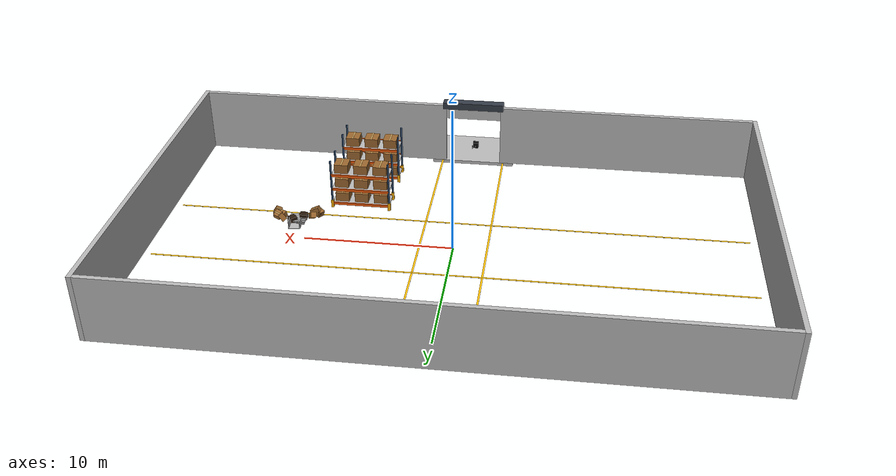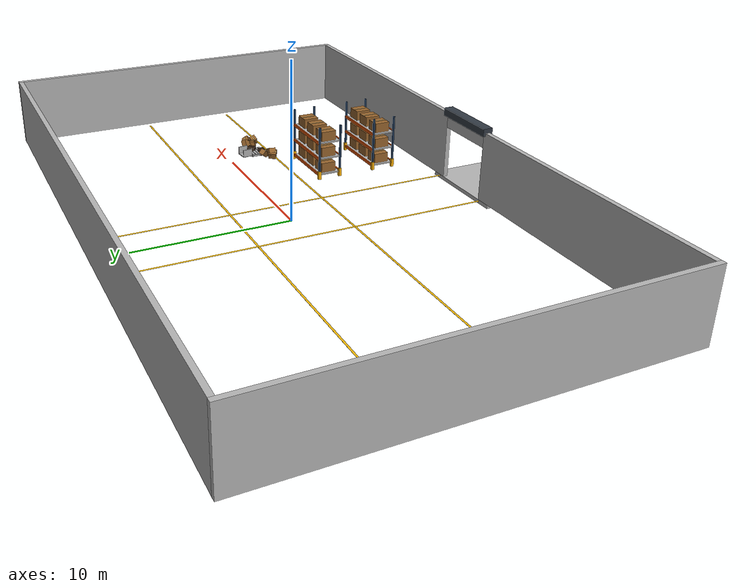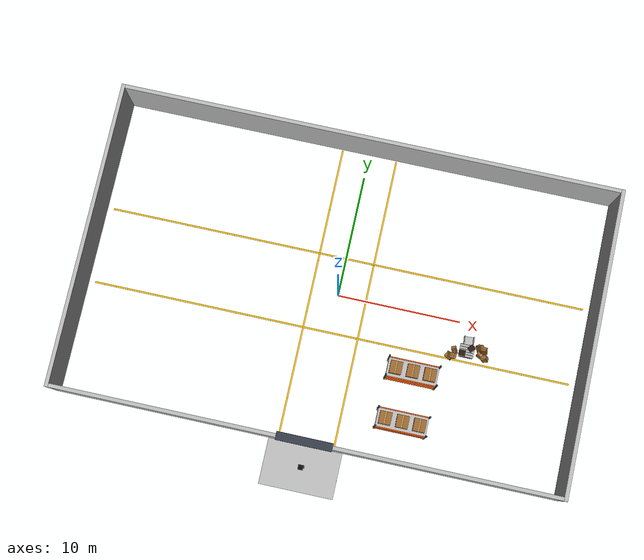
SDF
<sdf version="1.9">
 <world name="factory">
  <model name="perimeter_one_entrance">
   <static>true</static>
   <link name="body">
    <visual name="west_visual">
     <pose>-20.15 0 2.25 0 0 0</pose>
     <geometry><mesh><uri>model://factory_scene_assets/meshes/wall_005.dae</uri></mesh></geometry>
    </visual>
    <collision name="west_collision">
     <pose>-20.15 0 2.25 0 0 0</pose>
     <geometry><box><size>0.3 24.6 4.5</size></box></geometry>
    </collision>
    <visual name="east_visual">
     <pose>20.15 0 2.25 0 0 0</pose>
     <geometry><mesh><uri>model://factory_scene_assets/meshes/wall_005.dae</uri></mesh></geometry>
    </visual>
    <collision name="east_collision">
     <pose>20.15 0 2.25 0 0 0</pose>
     <geometry><box><size>0.3 24.6 4.5</size></box></geometry>
    </collision>
    <visual name="north_visual">
     <pose>0 12.15 2.25 0 0 0</pose>
     <geometry><mesh><uri>model://factory_scene_assets/meshes/wall_006.dae</uri></mesh></geometry>
    </visual>
    <collision name="north_collision">
     <pose>0 12.15 2.25 0 0 0</pose>
     <geometry><box><size>40 0.3 4.5</size></box></geometry>
    </collision>
    <visual name="south_left_visual">
     <pose>-11 -12.15 2.25 0 0 0</pose>
     <geometry><mesh><uri>model://factory_scene_assets/meshes/wall_007.dae</uri></mesh></geometry>
    </visual>
    <collision name="south_left_collision">
     <pose>-11 -12.15 2.25 0 0 0</pose>
     <geometry><box><size>18 0.3 4.5</size></box></geometry>
    </collision>
    <visual name="south_right_visual">
     <pose>11 -12.15 2.25 0 0 0</pose>
     <geometry><mesh><uri>model://factory_scene_assets/meshes/wall_007.dae</uri></mesh></geometry>
    </visual>
    <collision name="south_right_collision">
     <pose>11 -12.15 2.25 0 0 0</pose>
     <geometry><box><size>18 0.3 4.5</size></box></geometry>
    </collision>
    <visual name="gate_header_visual">
     <pose>0 -12.15 4 0 0 0</pose>
     <geometry><mesh><uri>model://factory_scene_assets/meshes/wall_008.dae</uri></mesh></geometry>
    </visual>
    <collision name="gate_header_collision">
     <pose>0 -12.15 4 0 0 0</pose>
     <geometry><box><size>4 0.3 1</size></box></geometry>
    </collision>
    <visual name="raised_gate_housing_visual">
     <pose>0 -12.15 4.55 0 0 0</pose>
     <geometry><box><size>4.4 0.65 0.5</size></box></geometry>
     <material><ambient>.2 .23 .27 1</ambient><diffuse>.2 .23 .27 1</diffuse></material>
    </visual>
    <collision name="raised_gate_housing_collision">
     <pose>0 -12.15 4.55 0 0 0</pose>
     <geometry><box><size>4.4 0.65 0.5</size></box></geometry>
    </collision>
   </link>
  </model>
  <model name="entrance_apron">
   <static>true</static>
   <link name="body">
    <visual name="slab_visual">
     <pose>0 -14 -0.12 0 0 0</pose>
     <geometry><mesh><uri>model://factory_scene_assets/meshes/floor_009.dae</uri></mesh></geometry>
    </visual>
    <collision name="slab_collision">
     <pose>0 -14 -0.12 0 0 0</pose>
     <geometry><box><size>6 4 0.24</size></box></geometry>
    </collision>
   </link>
  </model>
  <model name="yellow_safety_lines">
   <static>true</static>
   <link name="body">
    <visual name="h0_visual">
     <pose>0 -3.1 0.004 0 0 0</pose>
     <geometry><box><size>39 0.12 0.006</size></box></geometry>
     <material><ambient>1 .76 .025 1</ambient><diffuse>1 .76 .025 1</diffuse></material>
    </visual>
    <visual name="h1_visual">
     <pose>0 3.1 0.004 0 0 0</pose>
     <geometry><box><size>39 0.12 0.006</size></box></geometry>
     <material><ambient>1 .76 .025 1</ambient><diffuse>1 .76 .025 1</diffuse></material>
    </visual>
    <visual name="v0_visual">
     <pose>-2.25 0 0.004 0 0 0</pose>
     <geometry><box><size>0.12 23.8 0.006</size></box></geometry>
     <material><ambient>1 .76 .025 1</ambient><diffuse>1 .76 .025 1</diffuse></material>
    </visual>
    <visual name="v1_visual">
     <pose>2.25 0 0.004 0 0 0</pose>
     <geometry><box><size>0.12 23.8 0.006</size></box></geometry>
     <material><ambient>1 .76 .025 1</ambient><diffuse>1 .76 .025 1</diffuse></material>
    </visual>
   </link>
  </model>
  <model name="rack_1_0_0">
   <static>true</static>
   <pose>7 -9 0 0 0 0</pose>
   <link name="body">
    <visual name="post0_visual">
     <pose>-2 -0.75 1.8 0 0 0</pose>
     <geometry><box><size>0.12 0.12 3.6</size></box></geometry>
     <material><ambient>.12 .22 .34 1</ambient><diffuse>.12 .22 .34 1</diffuse></material>
    </visual>
    <collision name="post0_collision">
     <pose>-2 -0.75 1.8 0 0 0</pose>
     <geometry><box><size>0.12 0.12 3.6</size></box></geometry>
    </collision>
    <visual name="guard0_visual">
     <pose>-2 -0.75 0.275 0 0 0</pose>
     <geometry><box><size>0.18 0.18 0.55</size></box></geometry>
     <material><ambient>1 .7 .02 1</ambient><diffuse>1 .7 .02 1</diffuse></material>
    </visual>
    <collision name="guard0_collision">
     <pose>-2 -0.75 0.275 0 0 0</pose>
     <geometry><box><size>0.18 0.18 0.55</size></box></geometry>
    </collision>
    <visual name="post1_visual">
     <pose>2 -0.75 1.8 0 0 0</pose>
     <geometry><box><size>0.12 0.12 3.6</size></box></geometry>
     <material><ambient>.12 .22 .34 1</ambient><diffuse>.12 .22 .34 1</diffuse></material>
    </visual>
    <collision name="post1_collision">
     <pose>2 -0.75 1.8 0 0 0</pose>
     <geometry><box><size>0.12 0.12 3.6</size></box></geometry>
    </collision>
    <visual name="guard1_visual">
     <pose>2 -0.75 0.275 0 0 0</pose>
     <geometry><box><size>0.18 0.18 0.55</size></box></geometry>
     <material><ambient>1 .7 .02 1</ambient><diffuse>1 .7 .02 1</diffuse></material>
    </visual>
    <collision name="guard1_collision">
     <pose>2 -0.75 0.275 0 0 0</pose>
     <geometry><box><size>0.18 0.18 0.55</size></box></geometry>
    </collision>
    <visual name="post2_visual">
     <pose>-2 0.75 1.8 0 0 0</pose>
     <geometry><box><size>0.12 0.12 3.6</size></box></geometry>
     <material><ambient>.12 .22 .34 1</ambient><diffuse>.12 .22 .34 1</diffuse></material>
    </visual>
    <collision name="post2_collision">
     <pose>-2 0.75 1.8 0 0 0</pose>
     <geometry><box><size>0.12 0.12 3.6</size></box></geometry>
    </collision>
    <visual name="guard2_visual">
     <pose>-2 0.75 0.275 0 0 0</pose>
     <geometry><box><size>0.18 0.18 0.55</size></box></geometry>
     <material><ambient>1 .7 .02 1</ambient><diffuse>1 .7 .02 1</diffuse></material>
    </visual>
    <collision name="guard2_collision">
     <pose>-2 0.75 0.275 0 0 0</pose>
     <geometry><box><size>0.18 0.18 0.55</size></box></geometry>
    </collision>
    <visual name="post3_visual">
     <pose>2 0.75 1.8 0 0 0</pose>
     <geometry><box><size>0.12 0.12 3.6</size></box></geometry>
     <material><ambient>.12 .22 .34 1</ambient><diffuse>.12 .22 .34 1</diffuse></material>
    </visual>
    <collision name="post3_collision">
     <pose>2 0.75 1.8 0 0 0</pose>
     <geometry><box><size>0.12 0.12 3.6</size></box></geometry>
    </collision>
    <visual name="guard3_visual">
     <pose>2 0.75 0.275 0 0 0</pose>
     <geometry><box><size>0.18 0.18 0.55</size></box></geometry>
     <material><ambient>1 .7 .02 1</ambient><diffuse>1 .7 .02 1</diffuse></material>
    </visual>
    <collision name="guard3_collision">
     <pose>2 0.75 0.275 0 0 0</pose>
     <geometry><box><size>0.18 0.18 0.55</size></box></geometry>
    </collision>
    <visual name="shelf0_visual">
     <pose>0 0 0.3 0 0 0</pose>
     <geometry><mesh><uri>model://factory_scene_assets/meshes/wood_010.dae</uri></mesh></geometry>
    </visual>
    <collision name="shelf0_collision">
     <pose>0 0 0.3 0 0 0</pose>
     <geometry><box><size>4 1.5 0.08</size></box></geometry>
    </collision>
    <visual name="beam0_0_visual">
     <pose>0 -0.77 0.3 0 0 0</pose>
     <geometry><box><size>4 0.08 0.18</size></box></geometry>
     <material><ambient>.95 .35 .035 1</ambient><diffuse>.95 .35 .035 1</diffuse></material>
    </visual>
    <collision name="beam0_0_collision">
     <pose>0 -0.77 0.3 0 0 0</pose>
     <geometry><box><size>4 0.08 0.18</size></box></geometry>
    </collision>
    <visual name="beam0_1_visual">
     <pose>0 0.77 0.3 0 0 0</pose>
     <geometry><box><size>4 0.08 0.18</size></box></geometry>
     <material><ambient>.95 .35 .035 1</ambient><diffuse>.95 .35 .035 1</diffuse></material>
    </visual>
    <collision name="beam0_1_collision">
     <pose>0 0.77 0.3 0 0 0</pose>
     <geometry><box><size>4 0.08 0.18</size></box></geometry>
    </collision>
    <visual name="cargo0_0_visual">
     <pose>-1.35 0 0.665 0 0 0</pose>
     <geometry><box><size>0.95 1 0.65</size></box></geometry>
     <material><ambient>.60 .40 .18 1</ambient><diffuse>.60 .40 .18 1</diffuse></material>
    </visual>
    <collision name="cargo0_0_collision">
     <pose>-1.35 0 0.665 0 0 0</pose>
     <geometry><box><size>0.95 1 0.65</size></box></geometry>
    </collision>
    <visual name="cargo0_0_tape_visual">
     <pose>-1.35 0 0.993 0 0 0</pose>
     <geometry><box><size>0.09 1 0.006</size></box></geometry>
     <material><ambient>.85 .69 .4 1</ambient><diffuse>.85 .69 .4 1</diffuse></material>
    </visual>
    <visual name="cargo0_1_visual">
     <pose>0 0 0.665 0 0 0</pose>
     <geometry><box><size>0.95 1 0.65</size></box></geometry>
     <material><ambient>.60 .40 .18 1</ambient><diffuse>.60 .40 .18 1</diffuse></material>
    </visual>
    <collision name="cargo0_1_collision">
     <pose>0 0 0.665 0 0 0</pose>
     <geometry><box><size>0.95 1 0.65</size></box></geometry>
    </collision>
    <visual name="cargo0_1_tape_visual">
     <pose>0 0 0.993 0 0 0</pose>
     <geometry><box><size>0.09 1 0.006</size></box></geometry>
     <material><ambient>.85 .69 .4 1</ambient><diffuse>.85 .69 .4 1</diffuse></material>
    </visual>
    <visual name="cargo0_2_visual">
     <pose>1.35 0 0.665 0 0 0</pose>
     <geometry><box><size>0.95 1 0.65</size></box></geometry>
     <material><ambient>.60 .40 .18 1</ambient><diffuse>.60 .40 .18 1</diffuse></material>
    </visual>
    <collision name="cargo0_2_collision">
     <pose>1.35 0 0.665 0 0 0</pose>
     <geometry><box><size>0.95 1 0.65</size></box></geometry>
    </collision>
    <visual name="cargo0_2_tape_visual">
     <pose>1.35 0 0.993 0 0 0</pose>
     <geometry><box><size>0.09 1 0.006</size></box></geometry>
     <material><ambient>.85 .69 .4 1</ambient><diffuse>.85 .69 .4 1</diffuse></material>
    </visual>
    <visual name="shelf1_visual">
     <pose>0 0 1.4 0 0 0</pose>
     <geometry><mesh><uri>model://factory_scene_assets/meshes/wood_010.dae</uri></mesh></geometry>
    </visual>
    <collision name="shelf1_collision">
     <pose>0 0 1.4 0 0 0</pose>
     <geometry><box><size>4 1.5 0.08</size></box></geometry>
    </collision>
    <visual name="beam1_0_visual">
     <pose>0 -0.77 1.4 0 0 0</pose>
     <geometry><box><size>4 0.08 0.18</size></box></geometry>
     <material><ambient>.95 .35 .035 1</ambient><diffuse>.95 .35 .035 1</diffuse></material>
    </visual>
    <collision name="beam1_0_collision">
     <pose>0 -0.77 1.4 0 0 0</pose>
     <geometry><box><size>4 0.08 0.18</size></box></geometry>
    </collision>
    <visual name="beam1_1_visual">
     <pose>0 0.77 1.4 0 0 0</pose>
     <geometry><box><size>4 0.08 0.18</size></box></geometry>
     <material><ambient>.95 .35 .035 1</ambient><diffuse>.95 .35 .035 1</diffuse></material>
    </visual>
    <collision name="beam1_1_collision">
     <pose>0 0.77 1.4 0 0 0</pose>
     <geometry><box><size>4 0.08 0.18</size></box></geometry>
    </collision>
    <visual name="cargo1_0_visual">
     <pose>-1.35 0 1.765 0 0 0</pose>
     <geometry><box><size>0.95 1 0.65</size></box></geometry>
     <material><ambient>.60 .40 .18 1</ambient><diffuse>.60 .40 .18 1</diffuse></material>
    </visual>
    <collision name="cargo1_0_collision">
     <pose>-1.35 0 1.765 0 0 0</pose>
     <geometry><box><size>0.95 1 0.65</size></box></geometry>
    </collision>
    <visual name="cargo1_0_tape_visual">
     <pose>-1.35 0 2.093 0 0 0</pose>
     <geometry><box><size>0.09 1 0.006</size></box></geometry>
     <material><ambient>.85 .69 .4 1</ambient><diffuse>.85 .69 .4 1</diffuse></material>
    </visual>
    <visual name="cargo1_1_visual">
     <pose>0 0 1.765 0 0 0</pose>
     <geometry><box><size>0.95 1 0.65</size></box></geometry>
     <material><ambient>.60 .40 .18 1</ambient><diffuse>.60 .40 .18 1</diffuse></material>
    </visual>
    <collision name="cargo1_1_collision">
     <pose>0 0 1.765 0 0 0</pose>
     <geometry><box><size>0.95 1 0.65</size></box></geometry>
    </collision>
    <visual name="cargo1_1_tape_visual">
     <pose>0 0 2.093 0 0 0</pose>
     <geometry><box><size>0.09 1 0.006</size></box></geometry>
     <material><ambient>.85 .69 .4 1</ambient><diffuse>.85 .69 .4 1</diffuse></material>
    </visual>
    <visual name="cargo1_2_visual">
     <pose>1.35 0 1.765 0 0 0</pose>
     <geometry><box><size>0.95 1 0.65</size></box></geometry>
     <material><ambient>.60 .40 .18 1</ambient><diffuse>.60 .40 .18 1</diffuse></material>
    </visual>
    <collision name="cargo1_2_collision">
     <pose>1.35 0 1.765 0 0 0</pose>
     <geometry><box><size>0.95 1 0.65</size></box></geometry>
    </collision>
    <visual name="cargo1_2_tape_visual">
     <pose>1.35 0 2.093 0 0 0</pose>
     <geometry><box><size>0.09 1 0.006</size></box></geometry>
     <material><ambient>.85 .69 .4 1</ambient><diffuse>.85 .69 .4 1</diffuse></material>
    </visual>
    <visual name="shelf2_visual">
     <pose>0 0 2.5 0 0 0</pose>
     <geometry><mesh><uri>model://factory_scene_assets/meshes/wood_010.dae</uri></mesh></geometry>
    </visual>
    <collision name="shelf2_collision">
     <pose>0 0 2.5 0 0 0</pose>
     <geometry><box><size>4 1.5 0.08</size></box></geometry>
    </collision>
    <visual name="beam2_0_visual">
     <pose>0 -0.77 2.5 0 0 0</pose>
     <geometry><box><size>4 0.08 0.18</size></box></geometry>
     <material><ambient>.95 .35 .035 1</ambient><diffuse>.95 .35 .035 1</diffuse></material>
    </visual>
    <collision name="beam2_0_collision">
     <pose>0 -0.77 2.5 0 0 0</pose>
     <geometry><box><size>4 0.08 0.18</size></box></geometry>
    </collision>
    <visual name="beam2_1_visual">
     <pose>0 0.77 2.5 0 0 0</pose>
     <geometry><box><size>4 0.08 0.18</size></box></geometry>
     <material><ambient>.95 .35 .035 1</ambient><diffuse>.95 .35 .035 1</diffuse></material>
    </visual>
    <collision name="beam2_1_collision">
     <pose>0 0.77 2.5 0 0 0</pose>
     <geometry><box><size>4 0.08 0.18</size></box></geometry>
    </collision>
    <visual name="cargo2_0_visual">
     <pose>-1.35 0 2.865 0 0 0</pose>
     <geometry><box><size>0.95 1 0.65</size></box></geometry>
     <material><ambient>.60 .40 .18 1</ambient><diffuse>.60 .40 .18 1</diffuse></material>
    </visual>
    <collision name="cargo2_0_collision">
     <pose>-1.35 0 2.865 0 0 0</pose>
     <geometry><box><size>0.95 1 0.65</size></box></geometry>
    </collision>
    <visual name="cargo2_0_tape_visual">
     <pose>-1.35 0 3.193 0 0 0</pose>
     <geometry><box><size>0.09 1 0.006</size></box></geometry>
     <material><ambient>.85 .69 .4 1</ambient><diffuse>.85 .69 .4 1</diffuse></material>
    </visual>
    <visual name="cargo2_1_visual">
     <pose>0 0 2.865 0 0 0</pose>
     <geometry><box><size>0.95 1 0.65</size></box></geometry>
     <material><ambient>.60 .40 .18 1</ambient><diffuse>.60 .40 .18 1</diffuse></material>
    </visual>
    <collision name="cargo2_1_collision">
     <pose>0 0 2.865 0 0 0</pose>
     <geometry><box><size>0.95 1 0.65</size></box></geometry>
    </collision>
    <visual name="cargo2_1_tape_visual">
     <pose>0 0 3.193 0 0 0</pose>
     <geometry><box><size>0.09 1 0.006</size></box></geometry>
     <material><ambient>.85 .69 .4 1</ambient><diffuse>.85 .69 .4 1</diffuse></material>
    </visual>
    <visual name="cargo2_2_visual">
     <pose>1.35 0 2.865 0 0 0</pose>
     <geometry><box><size>0.95 1 0.65</size></box></geometry>
     <material><ambient>.60 .40 .18 1</ambient><diffuse>.60 .40 .18 1</diffuse></material>
    </visual>
    <collision name="cargo2_2_collision">
     <pose>1.35 0 2.865 0 0 0</pose>
     <geometry><box><size>0.95 1 0.65</size></box></geometry>
    </collision>
    <visual name="cargo2_2_tape_visual">
     <pose>1.35 0 3.193 0 0 0</pose>
     <geometry><box><size>0.09 1 0.006</size></box></geometry>
     <material><ambient>.85 .69 .4 1</ambient><diffuse>.85 .69 .4 1</diffuse></material>
    </visual>
   </link>
  </model>
  <model name="rack_1_0_1">
   <static>true</static>
   <pose>7 -5 0 0 0 0</pose>
   <link name="body">
    <visual name="post0_visual">
     <pose>-2 -0.75 1.8 0 0 0</pose>
     <geometry><box><size>0.12 0.12 3.6</size></box></geometry>
     <material><ambient>.12 .22 .34 1</ambient><diffuse>.12 .22 .34 1</diffuse></material>
    </visual>
    <collision name="post0_collision">
     <pose>-2 -0.75 1.8 0 0 0</pose>
     <geometry><box><size>0.12 0.12 3.6</size></box></geometry>
    </collision>
    <visual name="guard0_visual">
     <pose>-2 -0.75 0.275 0 0 0</pose>
     <geometry><box><size>0.18 0.18 0.55</size></box></geometry>
     <material><ambient>1 .7 .02 1</ambient><diffuse>1 .7 .02 1</diffuse></material>
    </visual>
    <collision name="guard0_collision">
     <pose>-2 -0.75 0.275 0 0 0</pose>
     <geometry><box><size>0.18 0.18 0.55</size></box></geometry>
    </collision>
    <visual name="post1_visual">
     <pose>2 -0.75 1.8 0 0 0</pose>
     <geometry><box><size>0.12 0.12 3.6</size></box></geometry>
     <material><ambient>.12 .22 .34 1</ambient><diffuse>.12 .22 .34 1</diffuse></material>
    </visual>
    <collision name="post1_collision">
     <pose>2 -0.75 1.8 0 0 0</pose>
     <geometry><box><size>0.12 0.12 3.6</size></box></geometry>
    </collision>
    <visual name="guard1_visual">
     <pose>2 -0.75 0.275 0 0 0</pose>
     <geometry><box><size>0.18 0.18 0.55</size></box></geometry>
     <material><ambient>1 .7 .02 1</ambient><diffuse>1 .7 .02 1</diffuse></material>
    </visual>
    <collision name="guard1_collision">
     <pose>2 -0.75 0.275 0 0 0</pose>
     <geometry><box><size>0.18 0.18 0.55</size></box></geometry>
    </collision>
    <visual name="post2_visual">
     <pose>-2 0.75 1.8 0 0 0</pose>
     <geometry><box><size>0.12 0.12 3.6</size></box></geometry>
     <material><ambient>.12 .22 .34 1</ambient><diffuse>.12 .22 .34 1</diffuse></material>
    </visual>
    <collision name="post2_collision">
     <pose>-2 0.75 1.8 0 0 0</pose>
     <geometry><box><size>0.12 0.12 3.6</size></box></geometry>
    </collision>
    <visual name="guard2_visual">
     <pose>-2 0.75 0.275 0 0 0</pose>
     <geometry><box><size>0.18 0.18 0.55</size></box></geometry>
     <material><ambient>1 .7 .02 1</ambient><diffuse>1 .7 .02 1</diffuse></material>
    </visual>
    <collision name="guard2_collision">
     <pose>-2 0.75 0.275 0 0 0</pose>
     <geometry><box><size>0.18 0.18 0.55</size></box></geometry>
    </collision>
    <visual name="post3_visual">
     <pose>2 0.75 1.8 0 0 0</pose>
     <geometry><box><size>0.12 0.12 3.6</size></box></geometry>
     <material><ambient>.12 .22 .34 1</ambient><diffuse>.12 .22 .34 1</diffuse></material>
    </visual>
    <collision name="post3_collision">
     <pose>2 0.75 1.8 0 0 0</pose>
     <geometry><box><size>0.12 0.12 3.6</size></box></geometry>
    </collision>
    <visual name="guard3_visual">
     <pose>2 0.75 0.275 0 0 0</pose>
     <geometry><box><size>0.18 0.18 0.55</size></box></geometry>
     <material><ambient>1 .7 .02 1</ambient><diffuse>1 .7 .02 1</diffuse></material>
    </visual>
    <collision name="guard3_collision">
     <pose>2 0.75 0.275 0 0 0</pose>
     <geometry><box><size>0.18 0.18 0.55</size></box></geometry>
    </collision>
    <visual name="shelf0_visual">
     <pose>0 0 0.3 0 0 0</pose>
     <geometry><mesh><uri>model://factory_scene_assets/meshes/wood_010.dae</uri></mesh></geometry>
    </visual>
    <collision name="shelf0_collision">
     <pose>0 0 0.3 0 0 0</pose>
     <geometry><box><size>4 1.5 0.08</size></box></geometry>
    </collision>
    <visual name="beam0_0_visual">
     <pose>0 -0.77 0.3 0 0 0</pose>
     <geometry><box><size>4 0.08 0.18</size></box></geometry>
     <material><ambient>.95 .35 .035 1</ambient><diffuse>.95 .35 .035 1</diffuse></material>
    </visual>
    <collision name="beam0_0_collision">
     <pose>0 -0.77 0.3 0 0 0</pose>
     <geometry><box><size>4 0.08 0.18</size></box></geometry>
    </collision>
    <visual name="beam0_1_visual">
     <pose>0 0.77 0.3 0 0 0</pose>
     <geometry><box><size>4 0.08 0.18</size></box></geometry>
     <material><ambient>.95 .35 .035 1</ambient><diffuse>.95 .35 .035 1</diffuse></material>
    </visual>
    <collision name="beam0_1_collision">
     <pose>0 0.77 0.3 0 0 0</pose>
     <geometry><box><size>4 0.08 0.18</size></box></geometry>
    </collision>
    <visual name="cargo0_0_visual">
     <pose>-1.35 0 0.665 0 0 0</pose>
     <geometry><box><size>0.95 1 0.65</size></box></geometry>
     <material><ambient>.60 .40 .18 1</ambient><diffuse>.60 .40 .18 1</diffuse></material>
    </visual>
    <collision name="cargo0_0_collision">
     <pose>-1.35 0 0.665 0 0 0</pose>
     <geometry><box><size>0.95 1 0.65</size></box></geometry>
    </collision>
    <visual name="cargo0_0_tape_visual">
     <pose>-1.35 0 0.993 0 0 0</pose>
     <geometry><box><size>0.09 1 0.006</size></box></geometry>
     <material><ambient>.85 .69 .4 1</ambient><diffuse>.85 .69 .4 1</diffuse></material>
    </visual>
    <visual name="cargo0_1_visual">
     <pose>0 0 0.665 0 0 0</pose>
     <geometry><box><size>0.95 1 0.65</size></box></geometry>
     <material><ambient>.60 .40 .18 1</ambient><diffuse>.60 .40 .18 1</diffuse></material>
    </visual>
    <collision name="cargo0_1_collision">
     <pose>0 0 0.665 0 0 0</pose>
     <geometry><box><size>0.95 1 0.65</size></box></geometry>
    </collision>
    <visual name="cargo0_1_tape_visual">
     <pose>0 0 0.993 0 0 0</pose>
     <geometry><box><size>0.09 1 0.006</size></box></geometry>
     <material><ambient>.85 .69 .4 1</ambient><diffuse>.85 .69 .4 1</diffuse></material>
    </visual>
    <visual name="cargo0_2_visual">
     <pose>1.35 0 0.665 0 0 0</pose>
     <geometry><box><size>0.95 1 0.65</size></box></geometry>
     <material><ambient>.60 .40 .18 1</ambient><diffuse>.60 .40 .18 1</diffuse></material>
    </visual>
    <collision name="cargo0_2_collision">
     <pose>1.35 0 0.665 0 0 0</pose>
     <geometry><box><size>0.95 1 0.65</size></box></geometry>
    </collision>
    <visual name="cargo0_2_tape_visual">
     <pose>1.35 0 0.993 0 0 0</pose>
     <geometry><box><size>0.09 1 0.006</size></box></geometry>
     <material><ambient>.85 .69 .4 1</ambient><diffuse>.85 .69 .4 1</diffuse></material>
    </visual>
    <visual name="shelf1_visual">
     <pose>0 0 1.4 0 0 0</pose>
     <geometry><mesh><uri>model://factory_scene_assets/meshes/wood_010.dae</uri></mesh></geometry>
    </visual>
    <collision name="shelf1_collision">
     <pose>0 0 1.4 0 0 0</pose>
     <geometry><box><size>4 1.5 0.08</size></box></geometry>
    </collision>
    <visual name="beam1_0_visual">
     <pose>0 -0.77 1.4 0 0 0</pose>
     <geometry><box><size>4 0.08 0.18</size></box></geometry>
     <material><ambient>.95 .35 .035 1</ambient><diffuse>.95 .35 .035 1</diffuse></material>
    </visual>
    <collision name="beam1_0_collision">
     <pose>0 -0.77 1.4 0 0 0</pose>
     <geometry><box><size>4 0.08 0.18</size></box></geometry>
    </collision>
    <visual name="beam1_1_visual">
     <pose>0 0.77 1.4 0 0 0</pose>
     <geometry><box><size>4 0.08 0.18</size></box></geometry>
     <material><ambient>.95 .35 .035 1</ambient><diffuse>.95 .35 .035 1</diffuse></material>
    </visual>
    <collision name="beam1_1_collision">
     <pose>0 0.77 1.4 0 0 0</pose>
     <geometry><box><size>4 0.08 0.18</size></box></geometry>
    </collision>
    <visual name="cargo1_0_visual">
     <pose>-1.35 0 1.765 0 0 0</pose>
     <geometry><box><size>0.95 1 0.65</size></box></geometry>
     <material><ambient>.60 .40 .18 1</ambient><diffuse>.60 .40 .18 1</diffuse></material>
    </visual>
    <collision name="cargo1_0_collision">
     <pose>-1.35 0 1.765 0 0 0</pose>
     <geometry><box><size>0.95 1 0.65</size></box></geometry>
    </collision>
    <visual name="cargo1_0_tape_visual">
     <pose>-1.35 0 2.093 0 0 0</pose>
     <geometry><box><size>0.09 1 0.006</size></box></geometry>
     <material><ambient>.85 .69 .4 1</ambient><diffuse>.85 .69 .4 1</diffuse></material>
    </visual>
    <visual name="cargo1_1_visual">
     <pose>0 0 1.765 0 0 0</pose>
     <geometry><box><size>0.95 1 0.65</size></box></geometry>
     <material><ambient>.60 .40 .18 1</ambient><diffuse>.60 .40 .18 1</diffuse></material>
    </visual>
    <collision name="cargo1_1_collision">
     <pose>0 0 1.765 0 0 0</pose>
     <geometry><box><size>0.95 1 0.65</size></box></geometry>
    </collision>
    <visual name="cargo1_1_tape_visual">
     <pose>0 0 2.093 0 0 0</pose>
     <geometry><box><size>0.09 1 0.006</size></box></geometry>
     <material><ambient>.85 .69 .4 1</ambient><diffuse>.85 .69 .4 1</diffuse></material>
    </visual>
    <visual name="cargo1_2_visual">
     <pose>1.35 0 1.765 0 0 0</pose>
     <geometry><box><size>0.95 1 0.65</size></box></geometry>
     <material><ambient>.60 .40 .18 1</ambient><diffuse>.60 .40 .18 1</diffuse></material>
    </visual>
    <collision name="cargo1_2_collision">
     <pose>1.35 0 1.765 0 0 0</pose>
     <geometry><box><size>0.95 1 0.65</size></box></geometry>
    </collision>
    <visual name="cargo1_2_tape_visual">
     <pose>1.35 0 2.093 0 0 0</pose>
     <geometry><box><size>0.09 1 0.006</size></box></geometry>
     <material><ambient>.85 .69 .4 1</ambient><diffuse>.85 .69 .4 1</diffuse></material>
    </visual>
    <visual name="shelf2_visual">
     <pose>0 0 2.5 0 0 0</pose>
     <geometry><mesh><uri>model://factory_scene_assets/meshes/wood_010.dae</uri></mesh></geometry>
    </visual>
    <collision name="shelf2_collision">
     <pose>0 0 2.5 0 0 0</pose>
     <geometry><box><size>4 1.5 0.08</size></box></geometry>
    </collision>
    <visual name="beam2_0_visual">
     <pose>0 -0.77 2.5 0 0 0</pose>
     <geometry><box><size>4 0.08 0.18</size></box></geometry>
     <material><ambient>.95 .35 .035 1</ambient><diffuse>.95 .35 .035 1</diffuse></material>
    </visual>
    <collision name="beam2_0_collision">
     <pose>0 -0.77 2.5 0 0 0</pose>
     <geometry><box><size>4 0.08 0.18</size></box></geometry>
    </collision>
    <visual name="beam2_1_visual">
     <pose>0 0.77 2.5 0 0 0</pose>
     <geometry><box><size>4 0.08 0.18</size></box></geometry>
     <material><ambient>.95 .35 .035 1</ambient><diffuse>.95 .35 .035 1</diffuse></material>
    </visual>
    <collision name="beam2_1_collision">
     <pose>0 0.77 2.5 0 0 0</pose>
     <geometry><box><size>4 0.08 0.18</size></box></geometry>
    </collision>
    <visual name="cargo2_0_visual">
     <pose>-1.35 0 2.865 0 0 0</pose>
     <geometry><box><size>0.95 1 0.65</size></box></geometry>
     <material><ambient>.60 .40 .18 1</ambient><diffuse>.60 .40 .18 1</diffuse></material>
    </visual>
    <collision name="cargo2_0_collision">
     <pose>-1.35 0 2.865 0 0 0</pose>
     <geometry><box><size>0.95 1 0.65</size></box></geometry>
    </collision>
    <visual name="cargo2_0_tape_visual">
     <pose>-1.35 0 3.193 0 0 0</pose>
     <geometry><box><size>0.09 1 0.006</size></box></geometry>
     <material><ambient>.85 .69 .4 1</ambient><diffuse>.85 .69 .4 1</diffuse></material>
    </visual>
    <visual name="cargo2_1_visual">
     <pose>0 0 2.865 0 0 0</pose>
     <geometry><box><size>0.95 1 0.65</size></box></geometry>
     <material><ambient>.60 .40 .18 1</ambient><diffuse>.60 .40 .18 1</diffuse></material>
    </visual>
    <collision name="cargo2_1_collision">
     <pose>0 0 2.865 0 0 0</pose>
     <geometry><box><size>0.95 1 0.65</size></box></geometry>
    </collision>
    <visual name="cargo2_1_tape_visual">
     <pose>0 0 3.193 0 0 0</pose>
     <geometry><box><size>0.09 1 0.006</size></box></geometry>
     <material><ambient>.85 .69 .4 1</ambient><diffuse>.85 .69 .4 1</diffuse></material>
    </visual>
    <visual name="cargo2_2_visual">
     <pose>1.35 0 2.865 0 0 0</pose>
     <geometry><box><size>0.95 1 0.65</size></box></geometry>
     <material><ambient>.60 .40 .18 1</ambient><diffuse>.60 .40 .18 1</diffuse></material>
    </visual>
    <collision name="cargo2_2_collision">
     <pose>1.35 0 2.865 0 0 0</pose>
     <geometry><box><size>0.95 1 0.65</size></box></geometry>
    </collision>
    <visual name="cargo2_2_tape_visual">
     <pose>1.35 0 3.193 0 0 0</pose>
     <geometry><box><size>0.09 1 0.006</size></box></geometry>
     <material><ambient>.85 .69 .4 1</ambient><diffuse>.85 .69 .4 1</diffuse></material>
    </visual>
   </link>
  </model>
  <model name="fallen_pallet_8">
   <static>true</static>
   <pose>11 -2.2 0 0 0 0</pose>
   <link name="body">
    <visual name="runner0_visual">
     <pose>-0.48 0 0.065 0 0 0</pose>
     <geometry><mesh><uri>model://factory_scene_assets/meshes/wood_011.dae</uri></mesh></geometry>
    </visual>
    <collision name="runner0_collision">
     <pose>-0.48 0 0.065 0 0 0</pose>
     <geometry><box><size>0.12 1 0.13</size></box></geometry>
    </collision>
    <visual name="runner1_visual">
     <pose>0 0 0.065 0 0 0</pose>
     <geometry><mesh><uri>model://factory_scene_assets/meshes/wood_011.dae</uri></mesh></geometry>
    </visual>
    <collision name="runner1_collision">
     <pose>0 0 0.065 0 0 0</pose>
     <geometry><box><size>0.12 1 0.13</size></box></geometry>
    </collision>
    <visual name="runner2_visual">
     <pose>0.48 0 0.065 0 0 0</pose>
     <geometry><mesh><uri>model://factory_scene_assets/meshes/wood_011.dae</uri></mesh></geometry>
    </visual>
    <collision name="runner2_collision">
     <pose>0.48 0 0.065 0 0 0</pose>
     <geometry><box><size>0.12 1 0.13</size></box></geometry>
    </collision>
    <visual name="plank0_visual">
     <pose>0 -0.4 0.155 0 0 0</pose>
     <geometry><mesh><uri>model://factory_scene_assets/meshes/wood_012.dae</uri></mesh></geometry>
    </visual>
    <collision name="plank0_collision">
     <pose>0 -0.4 0.155 0 0 0</pose>
     <geometry><box><size>1.2 0.16 0.05</size></box></geometry>
    </collision>
    <visual name="plank1_visual">
     <pose>0 -0.2 0.155 0 0 0</pose>
     <geometry><mesh><uri>model://factory_scene_assets/meshes/wood_012.dae</uri></mesh></geometry>
    </visual>
    <collision name="plank1_collision">
     <pose>0 -0.2 0.155 0 0 0</pose>
     <geometry><box><size>1.2 0.16 0.05</size></box></geometry>
    </collision>
    <visual name="plank2_visual">
     <pose>0 0 0.155 0 0 0</pose>
     <geometry><mesh><uri>model://factory_scene_assets/meshes/wood_012.dae</uri></mesh></geometry>
    </visual>
    <collision name="plank2_collision">
     <pose>0 0 0.155 0 0 0</pose>
     <geometry><box><size>1.2 0.16 0.05</size></box></geometry>
    </collision>
    <visual name="plank3_visual">
     <pose>0 0.2 0.155 0 0 0</pose>
     <geometry><mesh><uri>model://factory_scene_assets/meshes/wood_012.dae</uri></mesh></geometry>
    </visual>
    <collision name="plank3_collision">
     <pose>0 0.2 0.155 0 0 0</pose>
     <geometry><box><size>1.2 0.16 0.05</size></box></geometry>
    </collision>
    <visual name="plank4_visual">
     <pose>0 0.4 0.155 0 0 0</pose>
     <geometry><mesh><uri>model://factory_scene_assets/meshes/wood_012.dae</uri></mesh></geometry>
    </visual>
    <collision name="plank4_collision">
     <pose>0 0.4 0.155 0 0 0</pose>
     <geometry><box><size>1.2 0.16 0.05</size></box></geometry>
    </collision>
   </link>
  </model>
  <model name="fallen_box_08_0">
   <static>true</static>
   <pose>12 -1.836971 0 0 0 0</pose>
   <link name="body">
    <visual name="box_visual">
     <pose>0 0 0.4043261 0.5717792 -0.342539 2.034325</pose>
     <geometry><box><size>0.5749726 0.3667699 0.5158422</size></box></geometry>
     <material><ambient>.60 .40 .18 1</ambient><diffuse>.60 .40 .18 1</diffuse></material>
    </visual>
    <collision name="box_collision">
     <pose>0 0 0.4043261 0.5717792 -0.342539 2.034325</pose>
     <geometry><box><size>0.5749726 0.3667699 0.5158422</size></box></geometry>
    </collision>
    <visual name="box_tape_visual">
     <pose>0.1592445 -0.002793745 0.6109978 0.5717792 -0.342539 2.034325</pose>
     <geometry><box><size>0.09 0.3667699 0.006</size></box></geometry>
     <material><ambient>.85 .69 .4 1</ambient><diffuse>.85 .69 .4 1</diffuse></material>
    </visual>
   </link>
  </model>
  <model name="fallen_box_08_1">
   <static>true</static>
   <pose>10 -2.360068 0 0 0 0</pose>
   <link name="body">
    <visual name="box_visual">
     <pose>0 0 0.3509962 -0.6777063 0.2121767 -2.69873</pose>
     <geometry><box><size>0.3840654 0.5254966 0.366376</size></box></geometry>
     <material><ambient>.60 .40 .18 1</ambient><diffuse>.60 .40 .18 1</diffuse></material>
    </visual>
    <collision name="box_collision">
     <pose>0 0 0.3509962 -0.6777063 0.2121767 -2.69873</pose>
     <geometry><box><size>0.3840654 0.5254966 0.366376</size></box></geometry>
    </collision>
    <visual name="box_tape_visual">
     <pose>0.02242917 -0.1185682 0.4927865 -0.6777063 0.2121767 -2.69873</pose>
     <geometry><box><size>0.09 0.5254966 0.006</size></box></geometry>
     <material><ambient>.85 .69 .4 1</ambient><diffuse>.85 .69 .4 1</diffuse></material>
    </visual>
   </link>
  </model>
  <model name="fallen_box_08_2">
   <static>true</static>
   <pose>12.16 -2.332859 0 0 0 0</pose>
   <link name="body">
    <visual name="box_visual">
     <pose>0 0 0.2913396 0.2780412 -0.001475857 2.708821</pose>
     <geometry><box><size>0.6308229 0.4257868 0.4626501</size></box></geometry>
     <material><ambient>.60 .40 .18 1</ambient><diffuse>.60 .40 .18 1</diffuse></material>
    </visual>
    <collision name="box_collision">
     <pose>0 0 0.2913396 0.2780412 -0.001475857 2.708821</pose>
     <geometry><box><size>0.6308229 0.4257868 0.4626501</size></box></geometry>
    </collision>
    <visual name="box_tape_visual">
     <pose>0.0272752 0.05824686 0.5166651 0.2780412 -0.001475857 2.708821</pose>
     <geometry><box><size>0.09 0.4257868 0.006</size></box></geometry>
     <material><ambient>.85 .69 .4 1</ambient><diffuse>.85 .69 .4 1</diffuse></material>
    </visual>
   </link>
  </model>
  <model name="fallen_box_08_3">
   <static>true</static>
   <pose>9.84 -2.829786 0 0 0 0</pose>
   <link name="body">
    <visual name="box_visual">
     <pose>0 0 0.3946909 0.06241151 0.4671912 -0.03406994</pose>
     <geometry><box><size>0.615575 0.4428751 0.5246069</size></box></geometry>
     <material><ambient>.60 .40 .18 1</ambient><diffuse>.60 .40 .18 1</diffuse></material>
    </visual>
    <collision name="box_collision">
     <pose>0 0 0.3946909 0.06241151 0.4671912 -0.03406994</pose>
     <geometry><box><size>0.615575 0.4428751 0.5246069</size></box></geometry>
    </collision>
    <visual name="box_tape_visual">
     <pose>0.1186219 -0.02059986 0.6311024 0.06241151 0.4671912 -0.03406994</pose>
     <geometry><box><size>0.09 0.4428751 0.006</size></box></geometry>
     <material><ambient>.85 .69 .4 1</ambient><diffuse>.85 .69 .4 1</diffuse></material>
    </visual>
   </link>
  </model>
  <model name="fallen_box_08_4">
   <static>true</static>
   <pose>12.32 -2.022018 0 0 0 0</pose>
   <link name="body">
    <visual name="box_visual">
     <pose>0 0 0.4504998 0.4511938 -0.5758483 -1.993516</pose>
     <geometry><box><size>0.4640204 0.4439154 0.6173452</size></box></geometry>
     <material><ambient>.60 .40 .18 1</ambient><diffuse>.60 .40 .18 1</diffuse></material>
    </visual>
    <collision name="box_collision">
     <pose>0 0 0.4504998 0.4511938 -0.5758483 -1.993516</pose>
     <geometry><box><size>0.4640204 0.4439154 0.6173452</size></box></geometry>
    </collision>
    <visual name="box_tape_visual">
     <pose>-0.0612806 0.1950441 0.6857491 0.4511938 -0.5758483 -1.993516</pose>
     <geometry><box><size>0.09 0.4439154 0.006</size></box></geometry>
     <material><ambient>.85 .69 .4 1</ambient><diffuse>.85 .69 .4 1</diffuse></material>
    </visual>
   </link>
  </model>
  <model name="fallen_box_08_5">
   <static>true</static>
   <pose>9.68 -2.887684 0 0 0 0</pose>
   <link name="body">
    <visual name="box_visual">
     <pose>0 0 0.3056461 0.05853414 -0.3022905 -0.5490265</pose>
     <geometry><box><size>0.5597059 0.4860697 0.4171126</size></box></geometry>
     <material><ambient>.60 .40 .18 1</ambient><diffuse>.60 .40 .18 1</diffuse></material>
    </visual>
    <collision name="box_collision">
     <pose>0 0 0.3056461 0.05853414 -0.3022905 -0.5490265</pose>
     <geometry><box><size>0.5597059 0.4860697 0.4171126</size></box></geometry>
    </collision>
    <visual name="box_tape_visual">
     <pose>-0.06009224 0.02225396 0.507264 0.05853414 -0.3022905 -0.5490265</pose>
     <geometry><box><size>0.09 0.4860697 0.006</size></box></geometry>
     <material><ambient>.85 .69 .4 1</ambient><diffuse>.85 .69 .4 1</diffuse></material>
    </visual>
   </link>
  </model>
  <model name="fallen_box_08_6">
   <static>true</static>
   <pose>12.48 -2.556914 0 0 0 0</pose>
   <link name="body">
    <visual name="box_visual">
     <pose>0 0 0.397664 -0.5179561 0.3169928 1.654032</pose>
     <geometry><box><size>0.3904401 0.4329137 0.5450516</size></box></geometry>
     <material><ambient>.60 .40 .18 1</ambient><diffuse>.60 .40 .18 1</diffuse></material>
    </visual>
    <collision name="box_collision">
     <pose>0 0 0.397664 -0.5179561 0.3169928 1.654032</pose>
     <geometry><box><size>0.3904401 0.4329137 0.5450516</size></box></geometry>
    </collision>
    <visual name="box_tape_visual">
     <pose>-0.1421458 0.06301936 0.625123 -0.5179561 0.3169928 1.654032</pose>
     <geometry><box><size>0.09 0.4329137 0.006</size></box></geometry>
     <material><ambient>.85 .69 .4 1</ambient><diffuse>.85 .69 .4 1</diffuse></material>
    </visual>
   </link>
  </model>
  <model name="broken_crate_08">
   <static>true</static>
   <pose>11 -1.35 0 0 0 0.08101034</pose>
   <link name="body">
    <visual name="base_visual">
     <pose>0 0 0.03 0 0 0</pose>
     <geometry><mesh><uri>model://factory_scene_assets/meshes/wood_013.dae</uri></mesh></geometry>
    </visual>
    <collision name="base_collision">
     <pose>0 0 0.03 0 0 0</pose>
     <geometry><box><size>0.8 0.65 0.06</size></box></geometry>
    </collision>
    <visual name="side0_visual">
     <pose>-0.37 0 0.28 0 0 0</pose>
     <geometry><mesh><uri>model://factory_scene_assets/meshes/wood_014.dae</uri></mesh></geometry>
    </visual>
    <collision name="side0_collision">
     <pose>-0.37 0 0.28 0 0 0</pose>
     <geometry><box><size>0.06 0.65 0.5</size></box></geometry>
    </collision>
    <visual name="side1_visual">
     <pose>0.37 0 0.28 0 0 0</pose>
     <geometry><mesh><uri>model://factory_scene_assets/meshes/wood_014.dae</uri></mesh></geometry>
    </visual>
    <collision name="side1_collision">
     <pose>0.37 0 0.28 0 0 0</pose>
     <geometry><box><size>0.06 0.65 0.5</size></box></geometry>
    </collision>
   </link>
  </model>
  <model name="fire_06">
   <static>true</static>
   <pose>11 -2.2 0 0 0 0</pose>
   <link name="body">
    <visual name="scorch_visual">
     <pose>0 0 0.003 0 0 0</pose>
     <geometry><box><size>1.1 1.1 0.004</size></box></geometry>
     <material><ambient>.045 .035 .025 1</ambient><diffuse>.045 .035 .025 1</diffuse></material>
    </visual>
    <visual name="charred_crate0_visual">
     <pose>-0.35 -0.25 0.2 0 0 0</pose>
     <geometry><box><size>0.5 0.45 0.4</size></box></geometry>
     <material><ambient>.16 .095 .045 1</ambient><diffuse>.16 .095 .045 1</diffuse></material>
    </visual>
    <collision name="charred_crate0_collision">
     <pose>-0.35 -0.25 0.2 0 0 0</pose>
     <geometry><box><size>0.5 0.45 0.4</size></box></geometry>
    </collision>
    <visual name="charred_crate1_visual">
     <pose>0.32 0.25 0.2 0 0 0.8</pose>
     <geometry><box><size>0.5 0.45 0.4</size></box></geometry>
     <material><ambient>.16 .095 .045 1</ambient><diffuse>.16 .095 .045 1</diffuse></material>
    </visual>
    <collision name="charred_crate1_collision">
     <pose>0.32 0.25 0.2 0 0 0.8</pose>
     <geometry><box><size>0.5 0.45 0.4</size></box></geometry>
    </collision>
    <particle_emitter name="flame" type="box">
     <pose>0 0 .35 0 -1.57079633 0</pose>
     <emitting>true</emitting>
     <size>.12 .65 .65</size>
     <particle_size>.65 1.15 .65</particle_size>
     <lifetime>0.9</lifetime>
     <rate>40</rate>
     <min_velocity>0.35</min_velocity>
     <max_velocity>1.1</max_velocity>
     <scale_rate>0.02</scale_rate>
     <particle_scatter_ratio>.05</particle_scatter_ratio>
     <color_start>1 1 1 1</color_start>
     <color_end>1 .65 .35 0</color_end>
     <material>
      <diffuse>1 1 1 1</diffuse>
      <emissive>1 .55 .1 1</emissive>
      <pbr><metal><albedo_map>model://factory_scene_assets/textures/flame_colored.png</albedo_map></metal></pbr>
     </material>
    </particle_emitter>
    <particle_emitter name="smoke" type="box">
     <pose>0 0 1.25 0 -1.57079633 0</pose>
     <emitting>true</emitting>
     <size>.15 .85 .85</size>
     <particle_size>.8 .8 .8</particle_size>
     <lifetime>3</lifetime>
     <rate>7</rate>
     <min_velocity>0.45</min_velocity>
     <max_velocity>0.8</max_velocity>
     <scale_rate>0.45</scale_rate>
     <particle_scatter_ratio>.05</particle_scatter_ratio>
     <color_start>1 1 1 1</color_start>
     <color_end>.65 .65 .65 0</color_end>
     <material>
      <diffuse>1 1 1 1</diffuse>
      <emissive>0 0 0 1</emissive>
      <pbr><metal><albedo_map>model://factory_scene_assets/textures/smoke_gray.png</albedo_map></metal></pbr>
     </material>
    </particle_emitter>
    <light name="fire_glow" type="point">
     <pose>0 0 .8 0 0 0</pose>
     <diffuse>1 .38 .025 1</diffuse>
     <cast_shadows>false</cast_shadows>
     <attenuation>
      <range>4</range>
      <constant>1</constant>
      <linear>0.5</linear>
      <quadratic>0.2</quadratic>
     </attenuation>
    </light>
   </link>
  </model>
  <model name="aisle_robot">
   <static>false</static>
   <allow_auto_disable>false</allow_auto_disable>
   <link name="chassis">
    <pose>-0.06 0 0.33 0 0 0</pose>
    <inertial>
     <pose>-0.03 0 -0.12 0 0 0</pose>
     <mass>7</mass>
     <inertia><ixx>0.1866666667</ixx><iyy>0.1866666667</iyy><izz>0.1866666667</izz></inertia>
    </inertial>
    <visual name="black_cube">
     <geometry><box><size>0.40 0.40 0.40</size></box></geometry>
     <material>
      <ambient>0.025 0.025 0.025 1</ambient>
      <diffuse>0.035 0.035 0.035 1</diffuse>
      <specular>0.1 0.1 0.1 1</specular>
     </material>
    </visual>
    <visual name="front_marker">
     <pose>0.201 0 -0.07 0 0 0</pose>
     <geometry><box><size>0.003 0.10 0.025</size></box></geometry>
     <material><ambient>0.6 0.6 0.6 1</ambient><diffuse>0.6 0.6 0.6 1</diffuse></material>
    </visual>
    <gravity>false</gravity>
    <visual name="support_ball_visual">
     <geometry><sphere><radius>0.045</radius></sphere></geometry>
     <material><ambient>0.09 0.09 0.09 1</ambient><diffuse>0.09 0.09 0.09 1</diffuse></material>
     <pose>-0.17 0.0 -0.28500000000000003 0 0 0</pose>
    </visual>
   </link>
   <plugin filename="gz-sim-pose-publisher-system" name="gz::sim::systems::PosePublisher">
    <publish_link_pose>false</publish_link_pose>
    <publish_visual_pose>false</publish_visual_pose>
    <publish_collision_pose>false</publish_collision_pose>
    <publish_sensor_pose>false</publish_sensor_pose>
    <publish_model_pose>true</publish_model_pose>
    <publish_nested_model_pose>true</publish_nested_model_pose>
    <static_publisher>false</static_publisher>
    <use_pose_vector_msg>true</use_pose_vector_msg>
    <update_frequency>100</update_frequency>
   </plugin>
   <pose>0.0 -14.0 0.005 0 0 1.5707963267948966</pose>
  </model>
  <model name="aisle_robot_right_wheel">
   <static>false</static>
   <allow_auto_disable>false</allow_auto_disable>
   <link name="right_wheel">
    <inertial>
     <mass>0.25</mass>
     <inertia><ixx>0.000808333333</ixx><iyy>0.0015125</iyy><izz>0.000808333333</izz></inertia>
    </inertial>
    <visual name="tire">
     <pose>0 0 0 1.57079632679 0 0</pose>
     <geometry><cylinder><radius>0.11</radius><length>0.05</length></cylinder></geometry>
     <material><ambient>0.09 0.09 0.09 1</ambient><diffuse>0.09 0.09 0.09 1</diffuse></material>
    </visual>
    <visual name="rotation_spoke">
     <pose>0 -0.027 0 0 0 0</pose>
     <geometry><box><size>0.18 0.005 0.015</size></box></geometry>
     <material><ambient>0.65 0.65 0.65 1</ambient><diffuse>0.65 0.65 0.65 1</diffuse></material>
    </visual>
    <gravity>false</gravity>
   </link>
   <pose>0.25 -14.0 0.115 0 0 1.5707963267948966</pose>
  </model>
 </world>
</sdf>
